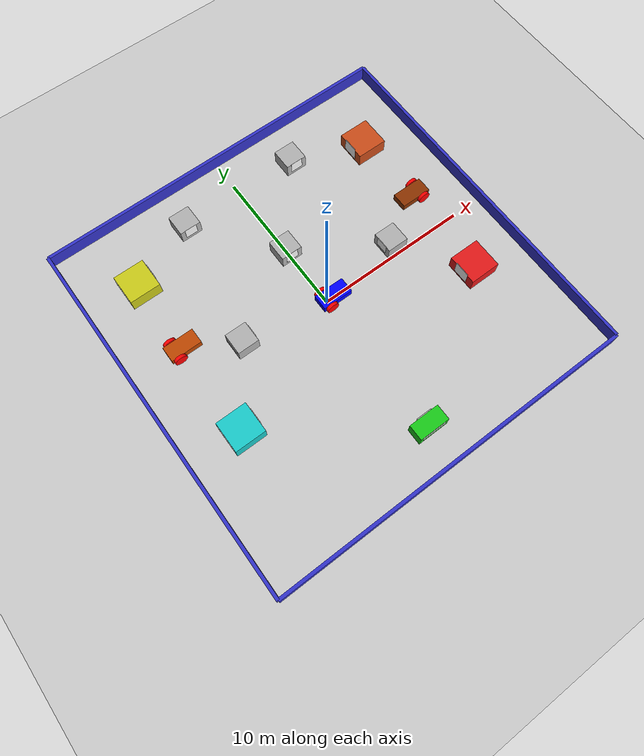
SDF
<?xml version="1.0" ?>
<sdf version="1.8">
    <world name="car_world">
        <physics name="1ms" type="ignored">
            <max_step_size>0.001</max_step_size>
            <real_time_factor>1.0</real_time_factor>
        </physics>
        <plugin
            filename="gz-sim-physics-system"
            name="gz::sim::systems::Physics">
        </plugin>
        <plugin
            filename="gz-sim-user-commands-system"
            name="gz::sim::systems::UserCommands">
        </plugin>
        <plugin
            filename="gz-sim-scene-broadcaster-system"
            name="gz::sim::systems::SceneBroadcaster">
        </plugin>
        <plugin
            filename="gz-sim-sensors-system"
            name="gz::sim::systems::Sensors">
        <render_engine>ogre2</render_engine>
        </plugin>

        <light type="directional" name="sun">
            <cast_shadows>true</cast_shadows>
            <pose>0 0 10 0 0 0</pose>
            <diffuse>0.8 0.8 0.8 1</diffuse>
            <specular>0.2 0.2 0.2 1</specular>
            <attenuation>
                <range>1000</range>
                <constant>0.9</constant>
                <linear>0.01</linear>
                <quadratic>0.001</quadratic>
            </attenuation>
            <direction>-0.5 0.1 -0.9</direction>
        </light>

        <model name="ground_plane">
            <static>true</static>
            <link name="link">
                <collision name="collision">
                <geometry>
                    <plane>
                    <normal>0 0 1</normal>
                    </plane>
                </geometry>
                </collision>
                <visual name="visual">
                <geometry>
                    <plane>
                    <normal>0 0 1</normal>
                    <size>100 100</size>
                    </plane>
                </geometry>
                <material>
                    <ambient>0.8 0.8 0.8 1</ambient>
                    <diffuse>0.8 0.8 0.8 1</diffuse>
                    <specular>0.8 0.8 0.8 1</specular>
                </material>
                </visual>
            </link>
        </model>

        <model name='vehicle_blue' canonical_link='chassis'>
            <pose relative_to='world'>0 0 0 0 0 0</pose>   <!--the pose is relative to the world by default-->

            <frame name="lidar_frame" attached_to='chassis'>
            <pose>0.8 0 0.5 0 0 0</pose>
            </frame>

            <!--chassis-->
            <link name='chassis'>
                <pose relative_to='__model__'>0.5 0 0.4 0 0 0</pose>
                <inertial> <!--inertial properties of the link mass, inertia matix-->
                    <mass>1.14395</mass>
                    <inertia>
                        <ixx>0.095329</ixx>
                        <ixy>0</ixy>
                        <ixz>0</ixz>
                        <iyy>0.381317</iyy>
                        <iyz>0</iyz>
                        <izz>0.476646</izz>
                    </inertia>
                </inertial>
                <visual name='visual'>
                    <geometry>
                        <box>
                            <size>2.0 1.0 0.5</size>
                        </box>
                    </geometry>
                    <!--Color of the link-->
                    <material>
                        <ambient>0.0 0.0 1.0 1</ambient>
                        <diffuse>0.0 0.0 1.0 1</diffuse>
                        <specular>0.0 0.0 1.0 1</specular>
                    </material>
                </visual>
                <collision name='collision'>
                    <geometry>
                        <box>
                            <size>2.0 1.0 0.5</size>
                        </box>
                    </geometry>
                </collision>
                <sensor name='gpu_lidar' type='gpu_lidar'>
                    <pose relative_to='lidar_frame'>0 0 0 0 0 0</pose>
                    <topic>lidar</topic>
                    <update_rate>20</update_rate>
                    <ray>
                        <scan>
                        <horizontal>
                            <samples>1080</samples>
                            <resolution>1</resolution>
                            <min_angle>-3.14159</min_angle>
                            <max_angle>3.14159</max_angle>
                        </horizontal>
                        <vertical>
                            <samples>1</samples>
                            <resolution>0.01</resolution>
                            <min_angle>0</min_angle>
                            <max_angle>0</max_angle>
                        </vertical>
                        </scan>
                        <range>
                        <min>0.08</min>
                        <max>10.0</max>
                        <resolution>0.01</resolution>
                        </range>
                    </ray>
                    <always_on>1</always_on>
                    <visualize>true</visualize>
                </sensor>
                <sensor name="front_cam" type="camera">
                    <pose>1.15 0 0.45 0 0.12 0</pose>
                    <update_rate>30</update_rate>
                    <camera>
                        <horizontal_fov>1.05</horizontal_fov>
                        <image>
                        <width>640</width>
                        <height>480</height>
                        <format>R8G8B8</format>
                        </image>
                    </camera>
                    <always_on>true</always_on>
                </sensor>
            </link>

            <!--Left wheel-->
            <link name='left_wheel'>
                <pose relative_to="chassis">-0.5 0.6 0 -1.5707 0 0</pose> <!--angles are in radian-->
                <inertial>
                    <mass>1</mass>
                    <inertia>
                        <ixx>0.043333</ixx>
                        <ixy>0</ixy>
                        <ixz>0</ixz>
                        <iyy>0.043333</iyy>
                        <iyz>0</iyz>
                        <izz>0.08</izz>
                    </inertia>
                </inertial>
                <visual name='visual'>
                    <geometry>
                        <cylinder>
                            <radius>0.4</radius>
                            <length>0.2</length>
                        </cylinder>
                    </geometry>
                    <material>
                        <ambient>1.0 0.0 0.0 1</ambient>
                        <diffuse>1.0 0.0 0.0 1</diffuse>
                        <specular>1.0 0.0 0.0 1</specular>
                    </material>
                </visual>
                <collision name='collision'>
                    <geometry>
                        <cylinder>
                            <radius>0.4</radius>
                            <length>0.2</length>
                        </cylinder>
                    </geometry>
                </collision>
            </link>

            <!--The same as left wheel but with different position-->
            <link name='right_wheel'>
                <pose relative_to="chassis">-0.5 -0.6 0 -1.5707 0 0</pose> <!--angles are in radian-->
                <inertial>
                    <mass>1</mass>
                    <inertia>
                        <ixx>0.043333</ixx>
                        <ixy>0</ixy>
                        <ixz>0</ixz>
                        <iyy>0.043333</iyy>
                        <iyz>0</iyz>
                        <izz>0.08</izz>
                    </inertia>
                </inertial>
                <visual name='visual'>
                    <geometry>
                        <cylinder>
                            <radius>0.4</radius>
                            <length>0.2</length>
                        </cylinder>
                    </geometry>
                    <material>
                        <ambient>1.0 0.0 0.0 1</ambient>
                        <diffuse>1.0 0.0 0.0 1</diffuse>
                        <specular>1.0 0.0 0.0 1</specular>
                    </material>
                </visual>
                <collision name='collision'>
                    <geometry>
                        <cylinder>
                            <radius>0.4</radius>
                            <length>0.2</length>
                        </cylinder>
                    </geometry>
                </collision>
            </link>

            <!--arbitrary frame-->
            <frame name="caster_frame" attached_to='chassis'>
                <pose>0.8 0 -0.2 0 0 0</pose>
            </frame>

            <!--caster wheel-->
            <link name='caster'>
                <pose relative_to='caster_frame'/>
                <inertial>
                    <mass>1</mass>
                    <inertia>
                        <ixx>0.016</ixx>
                        <ixy>0</ixy>
                        <ixz>0</ixz>
                        <iyy>0.016</iyy>
                        <iyz>0</iyz>
                        <izz>0.016</izz>
                    </inertia>
                </inertial>
                <visual name='visual'>
                    <geometry>
                        <sphere>
                            <radius>0.2</radius>
                        </sphere>
                    </geometry>
                    <material>
                        <ambient>0.0 1 0.0 1</ambient>
                        <diffuse>0.0 1 0.0 1</diffuse>
                        <specular>0.0 1 0.0 1</specular>
                    </material>
                </visual>
                <collision name='collision'>
                    <geometry>
                        <sphere>
                            <radius>0.2</radius>
                        </sphere>
                    </geometry>
                </collision>
            </link>

            <!--left wheel joint-->
            <joint name='left_wheel_joint' type='revolute'>
                <pose relative_to='left_wheel'/>
                <parent>chassis</parent>
                <child>left_wheel</child>
                <axis>
                    <xyz expressed_in='__model__'>0 1 0</xyz> <!--can be descired to any frame or even arbitrary frames-->
                    <limit>
                        <lower>-1.79769e+308</lower>    <!--negative infinity-->
                        <upper>1.79769e+308</upper>     <!--positive infinity-->
                    </limit>
                </axis>
            </joint>

            <!--right wheel joint-->
            <joint name='right_wheel_joint' type='revolute'>
                <pose relative_to='right_wheel'/>
                <parent>chassis</parent>
                <child>right_wheel</child>
                <axis>
                    <xyz expressed_in='__model__'>0 1 0</xyz>
                    <limit>
                        <lower>-1.79769e+308</lower>    <!--negative infinity-->
                        <upper>1.79769e+308</upper>     <!--positive infinity-->
                    </limit>
                </axis>
            </joint>

            <!--caster wheel joint--> <!--pose defult value is the child-->
            <joint name='caster_wheel' type='ball'>
                <parent>chassis</parent>
                <child>caster</child>
            </joint>

            <plugin
                filename="gz-sim-diff-drive-system"
                name="gz::sim::systems::DiffDrive">
            <left_joint>left_wheel_joint</left_joint>
            <right_joint>right_wheel_joint</right_joint>
            <wheel_separation>1.2</wheel_separation>
            <wheel_radius>0.4</wheel_radius>
            <odom_publish_frequency>30</odom_publish_frequency>
            <topic>cmd_vel</topic>
            </plugin>

        </model>

        <model name='robot_traffic_1' canonical_link='chassis'>
            <pose relative_to='world'>-9 2.5 0.3 0 0 0</pose>   <!--the pose is relative to the world by default-->   <!--the pose is relative to the world by default-->

            <frame name="lidar_frame" attached_to='chassis'>
            <pose>0.8 0 0.5 0 0 0</pose>
            </frame>

            <!--chassis-->
            <link name='chassis'>
                <pose relative_to='__model__'>0.5 0 0.4 0 0 0</pose>
                <inertial> <!--inertial properties of the link mass, inertia matix-->
                    <mass>1.14395</mass>
                    <inertia>
                        <ixx>0.095329</ixx>
                        <ixy>0</ixy>
                        <ixz>0</ixz>
                        <iyy>0.381317</iyy>
                        <iyz>0</iyz>
                        <izz>0.476646</izz>
                    </inertia>
                </inertial>
                <visual name='visual'>
                    <geometry>
                        <box>
                            <size>2.0 1.0 0.5</size>
                        </box>
                    </geometry>
                    <!--Color of the link-->
                    <material>
                        <ambient>0.75 0.28 0.00 1</ambient>
                        <diffuse>0.75 0.28 0.00 1</diffuse>
                        <specular>0.25 0.25 0.25 1</specular>
                    </material>
                </visual>
                <collision name='collision'>
                    <geometry>
                        <box>
                            <size>2.0 1.0 0.5</size>
                        </box>
                    </geometry>
                </collision>
                <sensor name='gpu_lidar' type='gpu_lidar'>
                    <pose relative_to='lidar_frame'>0 0 0 0 0 0</pose>
                    <topic>/robot_traffic_1/lidar</topic>
                    <update_rate>20</update_rate>
                    <ray>
                        <scan>
                        <horizontal>
                            <samples>1080</samples>
                            <resolution>1</resolution>
                            <min_angle>-3.14159</min_angle>
                            <max_angle>3.14159</max_angle>
                        </horizontal>
                        <vertical>
                            <samples>1</samples>
                            <resolution>0.01</resolution>
                            <min_angle>0</min_angle>
                            <max_angle>0</max_angle>
                        </vertical>
                        </scan>
                        <range>
                        <min>0.08</min>
                        <max>10.0</max>
                        <resolution>0.01</resolution>
                        </range>
                    </ray>
                    <always_on>1</always_on>
                    <visualize>true</visualize>
                </sensor>
                <sensor name="front_cam" type="camera">
                    <pose>1.15 0 0.45 0 0.12 0</pose>
                    <update_rate>30</update_rate>
                    <camera>
                        <horizontal_fov>1.05</horizontal_fov>
                        <image>
                        <width>640</width>
                        <height>480</height>
                        <format>R8G8B8</format>
                        </image>
                    </camera>
                    <always_on>true</always_on>
                </sensor>
            </link>

            <!--Left wheel-->
            <link name='left_wheel'>
                <pose relative_to="chassis">-0.5 0.6 0 -1.5707 0 0</pose> <!--angles are in radian-->
                <inertial>
                    <mass>1</mass>
                    <inertia>
                        <ixx>0.043333</ixx>
                        <ixy>0</ixy>
                        <ixz>0</ixz>
                        <iyy>0.043333</iyy>
                        <iyz>0</iyz>
                        <izz>0.08</izz>
                    </inertia>
                </inertial>
                <visual name='visual'>
                    <geometry>
                        <cylinder>
                            <radius>0.4</radius>
                            <length>0.2</length>
                        </cylinder>
                    </geometry>
                    <material>
                        <ambient>1.0 0.0 0.0 1</ambient>
                        <diffuse>1.0 0.0 0.0 1</diffuse>
                        <specular>1.0 0.0 0.0 1</specular>
                    </material>
                </visual>
                <collision name='collision'>
                    <geometry>
                        <cylinder>
                            <radius>0.4</radius>
                            <length>0.2</length>
                        </cylinder>
                    </geometry>
                </collision>
            </link>

            <!--The same as left wheel but with different position-->
            <link name='right_wheel'>
                <pose relative_to="chassis">-0.5 -0.6 0 -1.5707 0 0</pose> <!--angles are in radian-->
                <inertial>
                    <mass>1</mass>
                    <inertia>
                        <ixx>0.043333</ixx>
                        <ixy>0</ixy>
                        <ixz>0</ixz>
                        <iyy>0.043333</iyy>
                        <iyz>0</iyz>
                        <izz>0.08</izz>
                    </inertia>
                </inertial>
                <visual name='visual'>
                    <geometry>
                        <cylinder>
                            <radius>0.4</radius>
                            <length>0.2</length>
                        </cylinder>
                    </geometry>
                    <material>
                        <ambient>1.0 0.0 0.0 1</ambient>
                        <diffuse>1.0 0.0 0.0 1</diffuse>
                        <specular>1.0 0.0 0.0 1</specular>
                    </material>
                </visual>
                <collision name='collision'>
                    <geometry>
                        <cylinder>
                            <radius>0.4</radius>
                            <length>0.2</length>
                        </cylinder>
                    </geometry>
                </collision>
            </link>

            <!--arbitrary frame-->
            <frame name="caster_frame" attached_to='chassis'>
                <pose>0.8 0 -0.2 0 0 0</pose>
            </frame>

            <!--caster wheel-->
            <link name='caster'>
                <pose relative_to='caster_frame'/>
                <inertial>
                    <mass>1</mass>
                    <inertia>
                        <ixx>0.016</ixx>
                        <ixy>0</ixy>
                        <ixz>0</ixz>
                        <iyy>0.016</iyy>
                        <iyz>0</iyz>
                        <izz>0.016</izz>
                    </inertia>
                </inertial>
                <visual name='visual'>
                    <geometry>
                        <sphere>
                            <radius>0.2</radius>
                        </sphere>
                    </geometry>
                    <material>
                        <ambient>0.0 1 0.0 1</ambient>
                        <diffuse>0.0 1 0.0 1</diffuse>
                        <specular>0.0 1 0.0 1</specular>
                    </material>
                </visual>
                <collision name='collision'>
                    <geometry>
                        <sphere>
                            <radius>0.2</radius>
                        </sphere>
                    </geometry>
                </collision>
            </link>

            <!--left wheel joint-->
            <joint name='left_wheel_joint' type='revolute'>
                <pose relative_to='left_wheel'/>
                <parent>chassis</parent>
                <child>left_wheel</child>
                <axis>
                    <xyz expressed_in='__model__'>0 1 0</xyz> <!--can be descired to any frame or even arbitrary frames-->
                    <limit>
                        <lower>-1.79769e+308</lower>    <!--negative infinity-->
                        <upper>1.79769e+308</upper>     <!--positive infinity-->
                    </limit>
                </axis>
            </joint>

            <!--right wheel joint-->
            <joint name='right_wheel_joint' type='revolute'>
                <pose relative_to='right_wheel'/>
                <parent>chassis</parent>
                <child>right_wheel</child>
                <axis>
                    <xyz expressed_in='__model__'>0 1 0</xyz>
                    <limit>
                        <lower>-1.79769e+308</lower>    <!--negative infinity-->
                        <upper>1.79769e+308</upper>     <!--positive infinity-->
                    </limit>
                </axis>
            </joint>

            <!--caster wheel joint--> <!--pose defult value is the child-->
            <joint name='caster_wheel' type='ball'>
                <parent>chassis</parent>
                <child>caster</child>
            </joint>

            <plugin
                filename="gz-sim-diff-drive-system"
                name="gz::sim::systems::DiffDrive">
            <left_joint>left_wheel_joint</left_joint>
            <right_joint>right_wheel_joint</right_joint>
            <wheel_separation>1.2</wheel_separation>
            <wheel_radius>0.4</wheel_radius>
            <odom_publish_frequency>30</odom_publish_frequency>
            <topic>/robot_traffic_1/cmd_vel</topic>
            </plugin>

        </model>

        <model name='robot_traffic_2' canonical_link='chassis'>
            <pose relative_to='world'>9 2.5 0.3 0 0 3.14</pose>   <!--the pose is relative to the world by default-->   <!--the pose is relative to the world by default-->

            <frame name="lidar_frame" attached_to='chassis'>
            <pose>0.8 0 0.5 0 0 0</pose>
            </frame>

            <!--chassis-->
            <link name='chassis'>
                <pose relative_to='__model__'>0.5 0 0.4 0 0 0</pose>
                <inertial> <!--inertial properties of the link mass, inertia matix-->
                    <mass>1.14395</mass>
                    <inertia>
                        <ixx>0.095329</ixx>
                        <ixy>0</ixy>
                        <ixz>0</ixz>
                        <iyy>0.381317</iyy>
                        <iyz>0</iyz>
                        <izz>0.476646</izz>
                    </inertia>
                </inertial>
                <visual name='visual'>
                    <geometry>
                        <box>
                            <size>2.0 1.0 0.5</size>
                        </box>
                    </geometry>
                    <!--Color of the link-->
                    <material>
                        <ambient>0.55 0.20 0.00 1</ambient>
                        <diffuse>0.55 0.20 0.00 1</diffuse>
                        <specular>0.25 0.25 0.25 1</specular>
                    </material>
                </visual>
                <collision name='collision'>
                    <geometry>
                        <box>
                            <size>2.0 1.0 0.5</size>
                        </box>
                    </geometry>
                </collision>
                <sensor name='gpu_lidar' type='gpu_lidar'>
                    <pose relative_to='lidar_frame'>0 0 0 0 0 0</pose>
                    <topic>/robot_traffic_2/lidar</topic>
                    <update_rate>20</update_rate>
                    <ray>
                        <scan>
                        <horizontal>
                            <samples>1080</samples>
                            <resolution>1</resolution>
                            <min_angle>-3.14159</min_angle>
                            <max_angle>3.14159</max_angle>
                        </horizontal>
                        <vertical>
                            <samples>1</samples>
                            <resolution>0.01</resolution>
                            <min_angle>0</min_angle>
                            <max_angle>0</max_angle>
                        </vertical>
                        </scan>
                        <range>
                        <min>0.08</min>
                        <max>10.0</max>
                        <resolution>0.01</resolution>
                        </range>
                    </ray>
                    <always_on>1</always_on>
                    <visualize>true</visualize>
                </sensor>
                <sensor name="front_cam" type="camera">
                    <pose>1.15 0 0.45 0 0.12 0</pose>
                    <update_rate>30</update_rate>
                    <camera>
                        <horizontal_fov>1.05</horizontal_fov>
                        <image>
                        <width>640</width>
                        <height>480</height>
                        <format>R8G8B8</format>
                        </image>
                    </camera>
                    <always_on>true</always_on>
                </sensor>
            </link>

            <!--Left wheel-->
            <link name='left_wheel'>
                <pose relative_to="chassis">-0.5 0.6 0 -1.5707 0 0</pose> <!--angles are in radian-->
                <inertial>
                    <mass>1</mass>
                    <inertia>
                        <ixx>0.043333</ixx>
                        <ixy>0</ixy>
                        <ixz>0</ixz>
                        <iyy>0.043333</iyy>
                        <iyz>0</iyz>
                        <izz>0.08</izz>
                    </inertia>
                </inertial>
                <visual name='visual'>
                    <geometry>
                        <cylinder>
                            <radius>0.4</radius>
                            <length>0.2</length>
                        </cylinder>
                    </geometry>
                    <material>
                        <ambient>1.0 0.0 0.0 1</ambient>
                        <diffuse>1.0 0.0 0.0 1</diffuse>
                        <specular>1.0 0.0 0.0 1</specular>
                    </material>
                </visual>
                <collision name='collision'>
                    <geometry>
                        <cylinder>
                            <radius>0.4</radius>
                            <length>0.2</length>
                        </cylinder>
                    </geometry>
                </collision>
            </link>

            <!--The same as left wheel but with different position-->
            <link name='right_wheel'>
                <pose relative_to="chassis">-0.5 -0.6 0 -1.5707 0 0</pose> <!--angles are in radian-->
                <inertial>
                    <mass>1</mass>
                    <inertia>
                        <ixx>0.043333</ixx>
                        <ixy>0</ixy>
                        <ixz>0</ixz>
                        <iyy>0.043333</iyy>
                        <iyz>0</iyz>
                        <izz>0.08</izz>
                    </inertia>
                </inertial>
                <visual name='visual'>
                    <geometry>
                        <cylinder>
                            <radius>0.4</radius>
                            <length>0.2</length>
                        </cylinder>
                    </geometry>
                    <material>
                        <ambient>1.0 0.0 0.0 1</ambient>
                        <diffuse>1.0 0.0 0.0 1</diffuse>
                        <specular>1.0 0.0 0.0 1</specular>
                    </material>
                </visual>
                <collision name='collision'>
                    <geometry>
                        <cylinder>
                            <radius>0.4</radius>
                            <length>0.2</length>
                        </cylinder>
                    </geometry>
                </collision>
            </link>

            <!--arbitrary frame-->
            <frame name="caster_frame" attached_to='chassis'>
                <pose>0.8 0 -0.2 0 0 0</pose>
            </frame>

            <!--caster wheel-->
            <link name='caster'>
                <pose relative_to='caster_frame'/>
                <inertial>
                    <mass>1</mass>
                    <inertia>
                        <ixx>0.016</ixx>
                        <ixy>0</ixy>
                        <ixz>0</ixz>
                        <iyy>0.016</iyy>
                        <iyz>0</iyz>
                        <izz>0.016</izz>
                    </inertia>
                </inertial>
                <visual name='visual'>
                    <geometry>
                        <sphere>
                            <radius>0.2</radius>
                        </sphere>
                    </geometry>
                    <material>
                        <ambient>0.0 1 0.0 1</ambient>
                        <diffuse>0.0 1 0.0 1</diffuse>
                        <specular>0.0 1 0.0 1</specular>
                    </material>
                </visual>
                <collision name='collision'>
                    <geometry>
                        <sphere>
                            <radius>0.2</radius>
                        </sphere>
                    </geometry>
                </collision>
            </link>

            <!--left wheel joint-->
            <joint name='left_wheel_joint' type='revolute'>
                <pose relative_to='left_wheel'/>
                <parent>chassis</parent>
                <child>left_wheel</child>
                <axis>
                    <xyz expressed_in='__model__'>0 1 0</xyz> <!--can be descired to any frame or even arbitrary frames-->
                    <limit>
                        <lower>-1.79769e+308</lower>    <!--negative infinity-->
                        <upper>1.79769e+308</upper>     <!--positive infinity-->
                    </limit>
                </axis>
            </joint>

            <!--right wheel joint-->
            <joint name='right_wheel_joint' type='revolute'>
                <pose relative_to='right_wheel'/>
                <parent>chassis</parent>
                <child>right_wheel</child>
                <axis>
                    <xyz expressed_in='__model__'>0 1 0</xyz>
                    <limit>
                        <lower>-1.79769e+308</lower>    <!--negative infinity-->
                        <upper>1.79769e+308</upper>     <!--positive infinity-->
                    </limit>
                </axis>
            </joint>

            <!--caster wheel joint--> <!--pose defult value is the child-->
            <joint name='caster_wheel' type='ball'>
                <parent>chassis</parent>
                <child>caster</child>
            </joint>

            <plugin
                filename="gz-sim-diff-drive-system"
                name="gz::sim::systems::DiffDrive">
            <left_joint>left_wheel_joint</left_joint>
            <right_joint>right_wheel_joint</right_joint>
            <wheel_separation>1.2</wheel_separation>
            <wheel_radius>0.4</wheel_radius>
            <odom_publish_frequency>30</odom_publish_frequency>
            <topic>/robot_traffic_2/cmd_vel</topic>
            </plugin>

        </model>

        <model name="town_model">
            <static>true</static>

            <!-- Outer boundary walls -->
            <link name="north_wall">
                <pose>0 12 0.5 0 0 0</pose>
                <collision name="collision"><geometry><box><size>24 0.2 1</size></box></geometry></collision>
                <visual name="visual"><geometry><box><size>24 0.2 1</size></box></geometry><material><ambient>0.2 0.2 0.8 1</ambient><diffuse>0.2 0.2 0.8 1</diffuse></material></visual>
            </link>

            <link name="south_wall">
                <pose>0 -12 0.5 0 0 0</pose>
                <collision name="collision"><geometry><box><size>24 0.2 1</size></box></geometry></collision>
                <visual name="visual"><geometry><box><size>24 0.2 1</size></box></geometry><material><ambient>0.2 0.2 0.8 1</ambient><diffuse>0.2 0.2 0.8 1</diffuse></material></visual>
            </link>

            <link name="east_wall">
                <pose>12 0 0.5 0 0 0</pose>
                <collision name="collision"><geometry><box><size>0.2 24 1</size></box></geometry></collision>
                <visual name="visual"><geometry><box><size>0.2 24 1</size></box></geometry><material><ambient>0.2 0.2 0.8 1</ambient><diffuse>0.2 0.2 0.8 1</diffuse></material></visual>
            </link>

            <link name="west_wall">
                <pose>-12 0 0.5 0 0 0</pose>
                <collision name="collision"><geometry><box><size>0.2 24 1</size></box></geometry></collision>
                <visual name="visual"><geometry><box><size>0.2 24 1</size></box></geometry><material><ambient>0.2 0.2 0.8 1</ambient><diffuse>0.2 0.2 0.8 1</diffuse></material></visual>
            </link>

            <!-- Service buildings -->
            <link name="dock">
                <pose>0 -9.5 0.5 0 0 0</pose>
                <collision name="collision"><geometry><box><size>2.0 1.0 1.0</size></box></geometry></collision>
                <visual name="visual"><geometry><box><size>2.0 1.0 1.0</size></box></geometry><material><ambient>0.1 0.8 0.1 1</ambient><diffuse>0.1 0.8 0.1 1</diffuse></material></visual>
                <!-- QR code marker for DOCK -->
                <visual name="qr_visual_DOCK">
                    <pose>0 0.51 0.35 0 0 0</pose>
                    <geometry>
                        <box>
                            <size>1.0 0.02 1.0</size>
                        </box>
                    </geometry>
                    <material>
                        <ambient>1 1 1 1</ambient>
                        <diffuse>1 1 1 1</diffuse>
                        <pbr>
                            <metal>
                                <albedo_map>file:///home/test/EECE698/PROJECT/amr_project_ws/src/amr_demo/textures/qr_codes/DOCK.png</albedo_map>
                                <roughness>1.0</roughness>
                                <metalness>0.0</metalness>
                            </metal>
                        </pbr>
                    </material>
                </visual>
                <!-- Human-readable label for DOCK, opposite the QR code -->
                <visual name="label_visual_DOCK">
                    <pose>0 -0.51 0.15 0 0 0</pose>
                    <geometry>
                        <box>
                            <size>1.6 0.02 0.4</size>
                        </box>
                    </geometry>
                    <material>
                        <ambient>1 1 1 1</ambient>
                        <diffuse>1 1 1 1</diffuse>
                        <pbr>
                            <metal>
                                <albedo_map>file:///home/test/EECE698/PROJECT/amr_project_ws/src/amr_demo/textures/labels/DOCK_label.png</albedo_map>
                                <roughness>1.0</roughness>
                                <metalness>0.0</metalness>
                            </metal>
                        </pbr>
                    </material>
                </visual>

            </link>

            <link name="supermarket">
                <pose>-8.5 7.5 0.5 0 0 0</pose>
                <collision name="collision"><geometry><box><size>2.0 2.0 1.0</size></box></geometry></collision>
                <visual name="visual"><geometry><box><size>2.0 2.0 1.0</size></box></geometry><material><ambient>0.8 0.8 0.1 1</ambient><diffuse>0.8 0.8 0.1 1</diffuse></material></visual>
                <!-- QR code marker for SUPERMARKET -->
                <visual name="qr_visual_SUPERMARKET">
                    <pose>1.01 0 0.15 0 0 0</pose>
                    <geometry>
                        <box>
                            <size>0.02 1.0 1.0</size>
                        </box>
                    </geometry>
                    <material>
                        <ambient>1 1 1 1</ambient>
                        <diffuse>1 1 1 1</diffuse>
                        <pbr>
                            <metal>
                                <albedo_map>file:///home/test/EECE698/PROJECT/amr_project_ws/src/amr_demo/textures/qr_codes/SUPERMARKET.png</albedo_map>
                                <roughness>1.0</roughness>
                                <metalness>0.0</metalness>
                            </metal>
                        </pbr>
                    </material>
                </visual>
                <!-- Human-readable label for SUPERMARKET, opposite the QR code -->
                <visual name="label_visual_SUPERMARKET">
                    <pose>-1.01 0 0.15 0 0 0</pose>
                    <geometry>
                        <box>
                            <size>0.02 1.6 0.4</size>
                        </box>
                    </geometry>
                    <material>
                        <ambient>1 1 1 1</ambient>
                        <diffuse>1 1 1 1</diffuse>
                        <pbr>
                            <metal>
                                <albedo_map>file:///home/test/EECE698/PROJECT/amr_project_ws/src/amr_demo/textures/labels/SUPERMARKET_label.png</albedo_map>
                                <roughness>1.0</roughness>
                                <metalness>0.0</metalness>
                            </metal>
                        </pbr>
                    </material>
                </visual>

            </link>

            <link name="restaurant">
                <pose>8.5 7.5 0.5 0 0 0</pose>
                <collision name="collision"><geometry><box><size>2.0 2.0 1.0</size></box></geometry></collision>
                <visual name="visual"><geometry><box><size>2.0 2.0 1.0</size></box></geometry><material><ambient>0.8 0.3 0.1 1</ambient><diffuse>0.8 0.3 0.1 1</diffuse></material></visual>
                <!-- QR code marker for RESTAURANT -->
                <visual name="qr_visual_RESTAURANT">
                    <pose>-1.01 0 0.15 0 0 0</pose>
                    <geometry>
                        <box>
                            <size>0.02 1.0 1.0</size>
                        </box>
                    </geometry>
                    <material>
                        <ambient>1 1 1 1</ambient>
                        <diffuse>1 1 1 1</diffuse>
                        <pbr>
                            <metal>
                                <albedo_map>file:///home/test/EECE698/PROJECT/amr_project_ws/src/amr_demo/textures/qr_codes/RESTAURANT.png</albedo_map>
                                <roughness>1.0</roughness>
                                <metalness>0.0</metalness>
                            </metal>
                        </pbr>
                    </material>
                </visual>
                <!-- Human-readable label for RESTAURANT, opposite the QR code -->
                <visual name="label_visual_RESTAURANT">
                    <pose>1.01 0 0.15 0 0 0</pose>
                    <geometry>
                        <box>
                            <size>0.02 1.6 0.4</size>
                        </box>
                    </geometry>
                    <material>
                        <ambient>1 1 1 1</ambient>
                        <diffuse>1 1 1 1</diffuse>
                        <pbr>
                            <metal>
                                <albedo_map>file:///home/test/EECE698/PROJECT/amr_project_ws/src/amr_demo/textures/labels/RESTAURANT_label.png</albedo_map>
                                <roughness>1.0</roughness>
                                <metalness>0.0</metalness>
                            </metal>
                        </pbr>
                    </material>
                </visual>

            </link>

            <link name="pharmacy">
                <pose>-8.5 -3.5 0.5 0 0 0</pose>
                <collision name="collision"><geometry><box><size>2.0 2.0 1.0</size></box></geometry></collision>
                <visual name="visual"><geometry><box><size>2.0 2.0 1.0</size></box></geometry><material><ambient>0.1 0.8 0.8 1</ambient><diffuse>0.1 0.8 0.8 1</diffuse></material></visual>
                <!-- QR code marker for PHARMACY -->
                <visual name="qr_visual_PHARMACY">
                    <pose>1.01 0 0.15 0 0 0</pose>
                    <geometry>
                        <box>
                            <size>0.02 1.0 1.0</size>
                        </box>
                    </geometry>
                    <material>
                        <ambient>1 1 1 1</ambient>
                        <diffuse>1 1 1 1</diffuse>
                        <pbr>
                            <metal>
                                <albedo_map>file:///home/test/EECE698/PROJECT/amr_project_ws/src/amr_demo/textures/qr_codes/PHARMACY.png</albedo_map>
                                <roughness>1.0</roughness>
                                <metalness>0.0</metalness>
                            </metal>
                        </pbr>
                    </material>
                </visual>
                <!-- Human-readable label for PHARMACY, opposite the QR code -->
                <visual name="label_visual_PHARMACY">
                    <pose>-1.01 0 0.15 0 0 0</pose>
                    <geometry>
                        <box>
                            <size>0.02 1.6 0.4</size>
                        </box>
                    </geometry>
                    <material>
                        <ambient>1 1 1 1</ambient>
                        <diffuse>1 1 1 1</diffuse>
                        <pbr>
                            <metal>
                                <albedo_map>file:///home/test/EECE698/PROJECT/amr_project_ws/src/amr_demo/textures/labels/PHARMACY_label.png</albedo_map>
                                <roughness>1.0</roughness>
                                <metalness>0.0</metalness>
                            </metal>
                        </pbr>
                    </material>
                </visual>

            </link>

            <link name="fire_station">
                <pose>8.5 -3.5 0.5 0 0 0</pose>
                <collision name="collision"><geometry><box><size>2.0 2.0 1.0</size></box></geometry></collision>
                <visual name="visual"><geometry><box><size>2.0 2.0 1.0</size></box></geometry><material><ambient>0.9 0.1 0.1 1</ambient><diffuse>0.9 0.1 0.1 1</diffuse></material></visual>
                <!-- QR code marker for FIRE_STATION -->
                <visual name="qr_visual_FIRE_STATION">
                    <pose>-1.01 0 0.15 0 0 0</pose>
                    <geometry>
                        <box>
                            <size>0.02 1.0 1.0</size>
                        </box>
                    </geometry>
                    <material>
                        <ambient>1 1 1 1</ambient>
                        <diffuse>1 1 1 1</diffuse>
                        <pbr>
                            <metal>
                                <albedo_map>file:///home/test/EECE698/PROJECT/amr_project_ws/src/amr_demo/textures/qr_codes/FIRE_STATION.png</albedo_map>
                                <roughness>1.0</roughness>
                                <metalness>0.0</metalness>
                            </metal>
                        </pbr>
                    </material>
                </visual>
                <!-- Human-readable label for FIRE_STATION, opposite the QR code -->
                <visual name="label_visual_FIRE_STATION">
                    <pose>1.01 0 0.15 0 0 0</pose>
                    <geometry>
                        <box>
                            <size>0.02 1.6 0.4</size>
                        </box>
                    </geometry>
                    <material>
                        <ambient>1 1 1 1</ambient>
                        <diffuse>1 1 1 1</diffuse>
                        <pbr>
                            <metal>
                                <albedo_map>file:///home/test/EECE698/PROJECT/amr_project_ws/src/amr_demo/textures/labels/FIRE_STATION_label.png</albedo_map>
                                <roughness>1.0</roughness>
                                <metalness>0.0</metalness>
                            </metal>
                        </pbr>
                    </material>
                </visual>

            </link>

            <!-- Houses -->
            <link name="house_1">
                <pose>-5.5 0.8 0.5 0 0 0</pose>
                <collision name="collision"><geometry><box><size>1.4 1.4 1.0</size></box></geometry></collision>
                <visual name="visual"><geometry><box><size>1.4 1.4 1.0</size></box></geometry><material><ambient>0.7 0.7 0.7 1</ambient><diffuse>0.7 0.7 0.7 1</diffuse></material></visual>
                <!-- QR code marker for HOUSE_1 -->
                <visual name="qr_visual_HOUSE_1">
                    <pose>0.71 0 0.15 0 0 0</pose>
                    <geometry>
                        <box>
                            <size>0.02 0.8 0.8</size>
                        </box>
                    </geometry>
                    <material>
                        <ambient>1 1 1 1</ambient>
                        <diffuse>1 1 1 1</diffuse>
                        <pbr>
                            <metal>
                                <albedo_map>file:///home/test/EECE698/PROJECT/amr_project_ws/src/amr_demo/textures/qr_codes/HOUSE_1.png</albedo_map>
                                <roughness>1.0</roughness>
                                <metalness>0.0</metalness>
                            </metal>
                        </pbr>
                    </material>
                </visual>
                <!-- Human-readable label for HOUSE_1, opposite the QR code -->
                <visual name="label_visual_HOUSE_1">
                    <pose>-0.71 0 0.15 0 0 0</pose>
                    <geometry>
                        <box>
                            <size>0.02 1.0 0.35</size>
                        </box>
                    </geometry>
                    <material>
                        <ambient>1 1 1 1</ambient>
                        <diffuse>1 1 1 1</diffuse>
                        <pbr>
                            <metal>
                                <albedo_map>file:///home/test/EECE698/PROJECT/amr_project_ws/src/amr_demo/textures/labels/HOUSE_1_label.png</albedo_map>
                                <roughness>1.0</roughness>
                                <metalness>0.0</metalness>
                            </metal>
                        </pbr>
                    </material>
                </visual>

            </link>

            <link name="house_2">
                <pose>-4.0 9.3 0.5 0 0 0</pose>
                <collision name="collision"><geometry><box><size>1.4 1.4 1.0</size></box></geometry></collision>
                <visual name="visual"><geometry><box><size>1.4 1.4 1.0</size></box></geometry><material><ambient>0.7 0.7 0.7 1</ambient><diffuse>0.7 0.7 0.7 1</diffuse></material></visual>
                <!-- QR code marker for HOUSE_2 -->
                <visual name="qr_visual_HOUSE_2">
                    <pose>0 -0.71 0.15 0 0 0</pose>
                    <geometry>
                        <box>
                            <size>0.8 0.02 0.8</size>
                        </box>
                    </geometry>
                    <material>
                        <ambient>1 1 1 1</ambient>
                        <diffuse>1 1 1 1</diffuse>
                        <pbr>
                            <metal>
                                <albedo_map>file:///home/test/EECE698/PROJECT/amr_project_ws/src/amr_demo/textures/qr_codes/HOUSE_2.png</albedo_map>
                                <roughness>1.0</roughness>
                                <metalness>0.0</metalness>
                            </metal>
                        </pbr>
                    </material>
                </visual>
                <!-- Human-readable label for HOUSE_2, opposite the QR code -->
                <visual name="label_visual_HOUSE_2">
                    <pose>0 0.71 0.15 0 0 0</pose>
                    <geometry>
                        <box>
                            <size>1.0 0.02 0.35</size>
                        </box>
                    </geometry>
                    <material>
                        <ambient>1 1 1 1</ambient>
                        <diffuse>1 1 1 1</diffuse>
                        <pbr>
                            <metal>
                                <albedo_map>file:///home/test/EECE698/PROJECT/amr_project_ws/src/amr_demo/textures/labels/HOUSE_2_label.png</albedo_map>
                                <roughness>1.0</roughness>
                                <metalness>0.0</metalness>
                            </metal>
                        </pbr>
                    </material>
                </visual>

            </link>

            <link name="house_3">
                <pose>4.0 9.3 0.5 0 0 0</pose>
                <collision name="collision"><geometry><box><size>1.4 1.4 1.0</size></box></geometry></collision>
                <visual name="visual"><geometry><box><size>1.4 1.4 1.0</size></box></geometry><material><ambient>0.7 0.7 0.7 1</ambient><diffuse>0.7 0.7 0.7 1</diffuse></material></visual>
                <!-- QR code marker for HOUSE_3 -->
                <visual name="qr_visual_HOUSE_3">
                    <pose>0 -0.71 0.15 0 0 0</pose>
                    <geometry>
                        <box>
                            <size>0.8 0.02 0.8</size>
                        </box>
                    </geometry>
                    <material>
                        <ambient>1 1 1 1</ambient>
                        <diffuse>1 1 1 1</diffuse>
                        <pbr>
                            <metal>
                                <albedo_map>file:///home/test/EECE698/PROJECT/amr_project_ws/src/amr_demo/textures/qr_codes/HOUSE_3.png</albedo_map>
                                <roughness>1.0</roughness>
                                <metalness>0.0</metalness>
                            </metal>
                        </pbr>
                    </material>
                </visual>
                <!-- Human-readable label for HOUSE_3, opposite the QR code -->
                <visual name="label_visual_HOUSE_3">
                    <pose>0 0.71 0.15 0 0 0</pose>
                    <geometry>
                        <box>
                            <size>1.0 0.02 0.35</size>
                        </box>
                    </geometry>
                    <material>
                        <ambient>1 1 1 1</ambient>
                        <diffuse>1 1 1 1</diffuse>
                        <pbr>
                            <metal>
                                <albedo_map>file:///home/test/EECE698/PROJECT/amr_project_ws/src/amr_demo/textures/labels/HOUSE_3_label.png</albedo_map>
                                <roughness>1.0</roughness>
                                <metalness>0.0</metalness>
                            </metal>
                        </pbr>
                    </material>
                </visual>

            </link>

            <link name="house_4">
                <pose>5.5 0.8 0.5 0 0 0</pose>
                <collision name="collision"><geometry><box><size>1.4 1.4 1.0</size></box></geometry></collision>
                <visual name="visual"><geometry><box><size>1.4 1.4 1.0</size></box></geometry><material><ambient>0.7 0.7 0.7 1</ambient><diffuse>0.7 0.7 0.7 1</diffuse></material></visual>
                <!-- QR code marker for HOUSE_4 -->
                <visual name="qr_visual_HOUSE_4">
                    <pose>-0.71 0 0.15 0 0 0</pose>
                    <geometry>
                        <box>
                            <size>0.02 0.8 0.8</size>
                        </box>
                    </geometry>
                    <material>
                        <ambient>1 1 1 1</ambient>
                        <diffuse>1 1 1 1</diffuse>
                        <pbr>
                            <metal>
                                <albedo_map>file:///home/test/EECE698/PROJECT/amr_project_ws/src/amr_demo/textures/qr_codes/HOUSE_4.png</albedo_map>
                                <roughness>1.0</roughness>
                                <metalness>0.0</metalness>
                            </metal>
                        </pbr>
                    </material>
                </visual>
                <!-- Human-readable label for HOUSE_4, opposite the QR code -->
                <visual name="label_visual_HOUSE_4">
                    <pose>0.71 0 0.15 0 0 0</pose>
                    <geometry>
                        <box>
                            <size>0.02 1.0 0.35</size>
                        </box>
                    </geometry>
                    <material>
                        <ambient>1 1 1 1</ambient>
                        <diffuse>1 1 1 1</diffuse>
                        <pbr>
                            <metal>
                                <albedo_map>file:///home/test/EECE698/PROJECT/amr_project_ws/src/amr_demo/textures/labels/HOUSE_4_label.png</albedo_map>
                                <roughness>1.0</roughness>
                                <metalness>0.0</metalness>
                            </metal>
                        </pbr>
                    </material>
                </visual>

            </link>

            <link name="house_5">
                <pose>0 4.2 0.5 0 0 0</pose>
                <collision name="collision"><geometry><box><size>1.4 1.4 1.0</size></box></geometry></collision>
                <visual name="visual"><geometry><box><size>1.4 1.4 1.0</size></box></geometry><material><ambient>0.7 0.7 0.7 1</ambient><diffuse>0.7 0.7 0.7 1</diffuse></material></visual>
                <!-- QR code marker for HOUSE_5 -->
                <visual name="qr_visual_HOUSE_5">
                    <pose>0 -0.71 0.15 0 0 0</pose>
                    <geometry>
                        <box>
                            <size>0.8 0.02 0.8</size>
                        </box>
                    </geometry>
                    <material>
                        <ambient>1 1 1 1</ambient>
                        <diffuse>1 1 1 1</diffuse>
                        <pbr>
                            <metal>
                                <albedo_map>file:///home/test/EECE698/PROJECT/amr_project_ws/src/amr_demo/textures/qr_codes/HOUSE_5.png</albedo_map>
                                <roughness>1.0</roughness>
                                <metalness>0.0</metalness>
                            </metal>
                        </pbr>
                    </material>
                </visual>
                <!-- Human-readable label for HOUSE_5, opposite the QR code -->
                <visual name="label_visual_HOUSE_5">
                    <pose>0 0.71 0.15 0 0 0</pose>
                    <geometry>
                        <box>
                            <size>1.0 0.02 0.35</size>
                        </box>
                    </geometry>
                    <material>
                        <ambient>1 1 1 1</ambient>
                        <diffuse>1 1 1 1</diffuse>
                        <pbr>
                            <metal>
                                <albedo_map>file:///home/test/EECE698/PROJECT/amr_project_ws/src/amr_demo/textures/labels/HOUSE_5_label.png</albedo_map>
                                <roughness>1.0</roughness>
                                <metalness>0.0</metalness>
                            </metal>
                        </pbr>
                    </material>
                </visual>

            </link>

        </model>

    </world>
</sdf>
